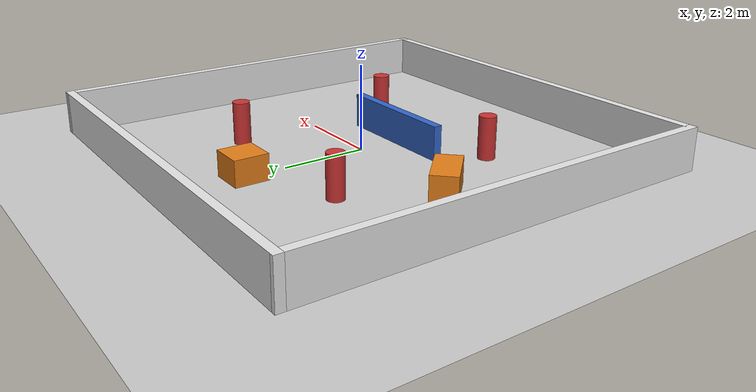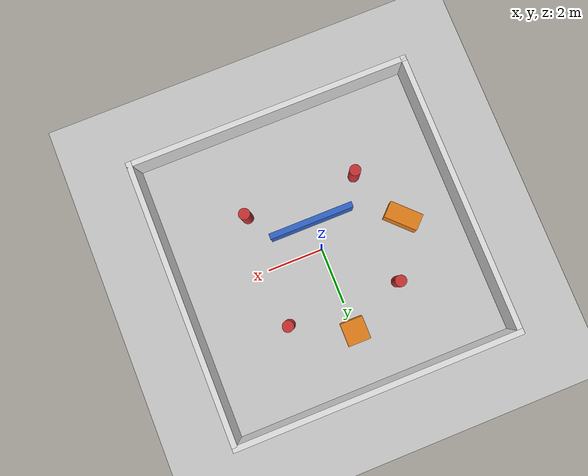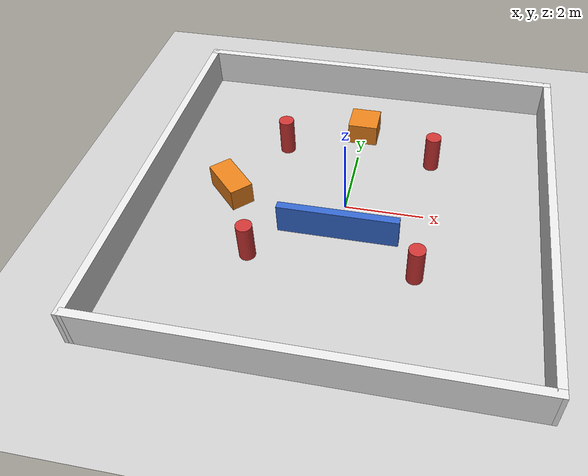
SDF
<?xml version="1.0" ?>
<!--
  my_world.sdf – Gazebo Harmonic (Jazzy compatible)
  10x10 m enclosed room with pillars and obstacles.
-->
<sdf version="1.9">
  <world name="my_robot_world">

    <!-- Physics -->
    <physics name="1ms" type="ignored">
      <max_step_size>0.001</max_step_size>
      <real_time_factor>1.0</real_time_factor>
    </physics>

    <!-- Required plugins for Jazzy/Harmonic -->
    <plugin filename="gz-sim-physics-system"
            name="gz::sim::systems::Physics"/>
    <plugin filename="gz-sim-user-commands-system"
            name="gz::sim::systems::UserCommands"/>
    <plugin filename="gz-sim-scene-broadcaster-system"
            name="gz::sim::systems::SceneBroadcaster"/>
    <plugin filename="gz-sim-contact-system"
            name="gz::sim::systems::Contact"/>
    <plugin filename="gz-sim-sensors-system"
            name="gz::sim::systems::Sensors">
      <render_engine>ogre2</render_engine>
    </plugin>

    <!-- Sun light -->
    <light name="sun" type="directional">
      <cast_shadows>true</cast_shadows>
      <pose>0 0 10 0 0 0</pose>
      <diffuse>0.8 0.8 0.8 1</diffuse>
      <specular>0.2 0.2 0.2 1</specular>
      <direction>-0.5 0.1 -0.9</direction>
    </light>

    <!-- Ground plane -->
    <model name="ground_plane">
      <static>true</static>
      <link name="link">
        <collision name="collision">
          <geometry>
            <plane><normal>0 0 1</normal><size>50 50</size></plane>
          </geometry>
        </collision>
        <visual name="visual">
          <geometry>
            <plane><normal>0 0 1</normal><size>50 50</size></plane>
          </geometry>
          <material>
            <ambient>0.8 0.8 0.8 1</ambient>
            <diffuse>0.8 0.8 0.8 1</diffuse>
          </material>
        </visual>
      </link>
    </model>

    <!-- =================== WALLS =================== -->
    <!-- North Wall -->
    <model name="wall_north">
      <static>true</static>
      <pose>0 5 0.5 0 0 0</pose>
      <link name="link">
        <collision name="col"><geometry><box><size>10.2 0.2 1.0</size></box></geometry></collision>
        <visual name="vis">
          <geometry><box><size>10.2 0.2 1.0</size></box></geometry>
          <material><ambient>0.9 0.9 0.9 1</ambient><diffuse>0.9 0.9 0.9 1</diffuse></material>
        </visual>
      </link>
    </model>

    <!-- South Wall -->
    <model name="wall_south">
      <static>true</static>
      <pose>0 -5 0.5 0 0 0</pose>
      <link name="link">
        <collision name="col"><geometry><box><size>10.2 0.2 1.0</size></box></geometry></collision>
        <visual name="vis">
          <geometry><box><size>10.2 0.2 1.0</size></box></geometry>
          <material><ambient>0.9 0.9 0.9 1</ambient><diffuse>0.9 0.9 0.9 1</diffuse></material>
        </visual>
      </link>
    </model>

    <!-- East Wall -->
    <model name="wall_east">
      <static>true</static>
      <pose>5 0 0.5 0 0 1.5707</pose>
      <link name="link">
        <collision name="col"><geometry><box><size>10.2 0.2 1.0</size></box></geometry></collision>
        <visual name="vis">
          <geometry><box><size>10.2 0.2 1.0</size></box></geometry>
          <material><ambient>0.9 0.9 0.9 1</ambient><diffuse>0.9 0.9 0.9 1</diffuse></material>
        </visual>
      </link>
    </model>

    <!-- West Wall -->
    <model name="wall_west">
      <static>true</static>
      <pose>-5 0 0.5 0 0 1.5707</pose>
      <link name="link">
        <collision name="col"><geometry><box><size>10.2 0.2 1.0</size></box></geometry></collision>
        <visual name="vis">
          <geometry><box><size>10.2 0.2 1.0</size></box></geometry>
          <material><ambient>0.9 0.9 0.9 1</ambient><diffuse>0.9 0.9 0.9 1</diffuse></material>
        </visual>
      </link>
    </model>

    <!-- =================== PILLARS =================== -->
    <model name="pillar_1">
      <static>true</static>
      <pose>2 2 0.5 0 0 0</pose>
      <link name="link">
        <collision name="col"><geometry><cylinder><radius>0.2</radius><length>1.0</length></cylinder></geometry></collision>
        <visual name="vis">
          <geometry><cylinder><radius>0.2</radius><length>1.0</length></cylinder></geometry>
          <material><ambient>0.8 0.2 0.2 1</ambient><diffuse>0.8 0.2 0.2 1</diffuse></material>
        </visual>
      </link>
    </model>

    <model name="pillar_2">
      <static>true</static>
      <pose>-2 2 0.5 0 0 0</pose>
      <link name="link">
        <collision name="col"><geometry><cylinder><radius>0.2</radius><length>1.0</length></cylinder></geometry></collision>
        <visual name="vis">
          <geometry><cylinder><radius>0.2</radius><length>1.0</length></cylinder></geometry>
          <material><ambient>0.8 0.2 0.2 1</ambient><diffuse>0.8 0.2 0.2 1</diffuse></material>
        </visual>
      </link>
    </model>

    <model name="pillar_3">
      <static>true</static>
      <pose>2 -2 0.5 0 0 0</pose>
      <link name="link">
        <collision name="col"><geometry><cylinder><radius>0.2</radius><length>1.0</length></cylinder></geometry></collision>
        <visual name="vis">
          <geometry><cylinder><radius>0.2</radius><length>1.0</length></cylinder></geometry>
          <material><ambient>0.8 0.2 0.2 1</ambient><diffuse>0.8 0.2 0.2 1</diffuse></material>
        </visual>
      </link>
    </model>

    <model name="pillar_4">
      <static>true</static>
      <pose>-2 -2 0.5 0 0 0</pose>
      <link name="link">
        <collision name="col"><geometry><cylinder><radius>0.2</radius><length>1.0</length></cylinder></geometry></collision>
        <visual name="vis">
          <geometry><cylinder><radius>0.2</radius><length>1.0</length></cylinder></geometry>
          <material><ambient>0.8 0.2 0.2 1</ambient><diffuse>0.8 0.2 0.2 1</diffuse></material>
        </visual>
      </link>
    </model>

    <!-- =================== BOX OBSTACLES =================== -->
    <model name="box_1">
      <static>true</static>
      <pose>0 3 0.3 0 0 0</pose>
      <link name="link">
        <collision name="col"><geometry><box><size>0.8 0.8 0.6</size></box></geometry></collision>
        <visual name="vis">
          <geometry><box><size>0.8 0.8 0.6</size></box></geometry>
          <material><ambient>0.9 0.5 0.1 1</ambient><diffuse>0.9 0.5 0.1 1</diffuse></material>
        </visual>
      </link>
    </model>

    <model name="box_2">
      <static>true</static>
      <pose>-3 0 0.3 0 0 0.785</pose>
      <link name="link">
        <collision name="col"><geometry><box><size>0.6 1.2 0.6</size></box></geometry></collision>
        <visual name="vis">
          <geometry><box><size>0.6 1.2 0.6</size></box></geometry>
          <material><ambient>0.9 0.5 0.1 1</ambient><diffuse>0.9 0.5 0.1 1</diffuse></material>
        </visual>
      </link>
    </model>

    <!-- Inner divider wall -->
    <model name="inner_wall">
      <static>true</static>
      <pose>0 -1 0.4 0 0 0</pose>
      <link name="link">
        <collision name="col"><geometry><box><size>3.0 0.2 0.8</size></box></geometry></collision>
        <visual name="vis">
          <geometry><box><size>3.0 0.2 0.8</size></box></geometry>
          <material><ambient>0.2 0.4 0.8 1</ambient><diffuse>0.2 0.4 0.8 1</diffuse></material>
        </visual>
      </link>
    </model>

  </world>
</sdf>
